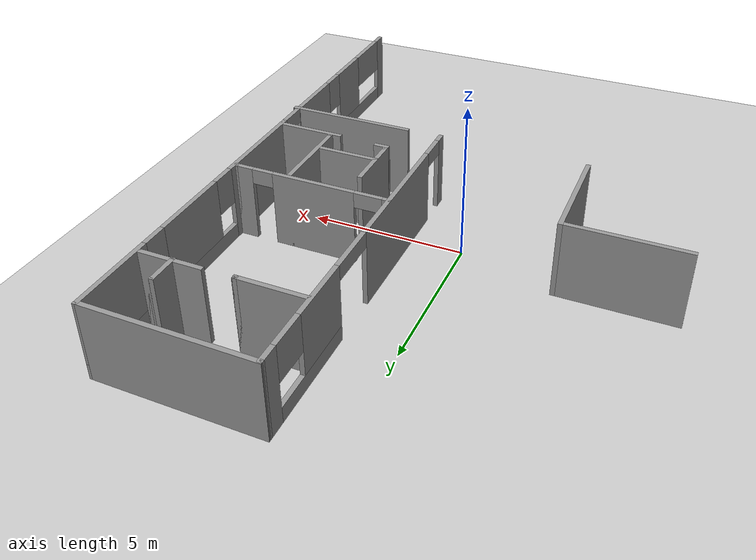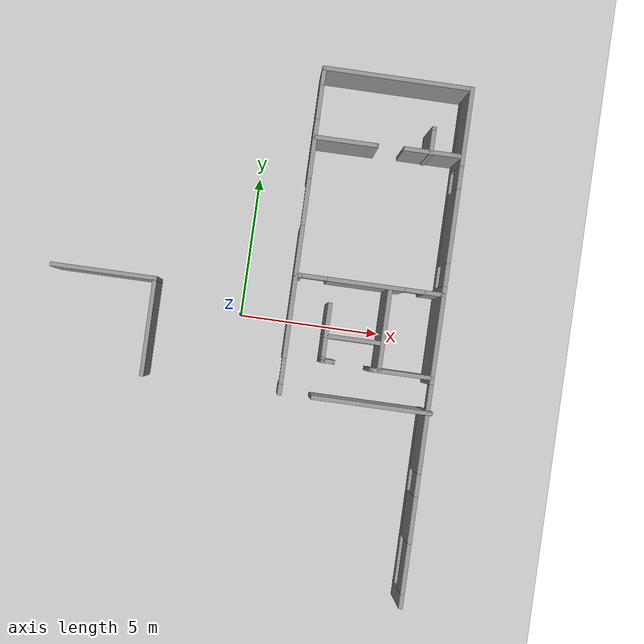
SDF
<sdf version="1.7">
 <world name="default">
  <model name="ground_plane">
   <static>1</static>
   <link name="link">
    <collision name="collision">
     <geometry><plane><normal>0 0 1</normal><size>100 100</size></plane></geometry>
     <surface>
      <contact><collide_bitmask>65535</collide_bitmask></contact>
      <friction><ode><mu>100</mu><mu2>50</mu2></ode></friction>
     </surface>
    </collision>
    <visual name="visual">
     <cast_shadows>0</cast_shadows>
     <geometry><plane><normal>0 0 1</normal><size>100 100</size></plane></geometry>
     <material>
      <script><uri>file://media/materials/scripts/gazebo.material</uri><name>Gazebo/Grey</name></script>
     </material>
    </visual>
   </link>
  </model>
  <model name="Floorplan6">
   <pose>0.09299 -3.7406 0 0 -0 0</pose>
   <link name="Wall_0">
    <collision name="Wall_0_Collision">
     <geometry><box><size>3.75 0.15 2.5</size></box></geometry>
     <pose>0 0 1.25 0 -0 0</pose>
    </collision>
    <visual name="Wall_0_Visual">
     <pose>0 0 1.25 0 -0 0</pose>
     <geometry><box><size>3.75 0.15 2.5</size></box></geometry>
     <material>
      <script><uri>file://media/materials/scripts/gazebo.material</uri><name>Gazebo/Grey</name></script>
      <ambient>1 1 1 1</ambient>
     </material>
     <meta><layer>0</layer></meta>
    </visual>
    <pose>-4.99953 4.56763 0 0 -0 3.14159</pose>
   </link>
   <link name="Wall_3">
    <pose>6.80047 3.51763 0 0 -0 1.5708</pose>
    <visual name="Wall_3_Visual_0">
     <pose>-8.87733 0 1.25 0 -0 0</pose>
     <geometry><box><size>0.495347 0.15 2.5</size></box></geometry>
     <material>
      <script><uri>file://media/materials/scripts/gazebo.material</uri><name>Gazebo/Grey</name></script>
      <ambient>1 1 1 1</ambient>
     </material>
     <meta><layer>0</layer></meta>
    </visual>
    <collision name="Wall_3_Collision_0">
     <geometry><box><size>0.495347 0.15 2.5</size></box></geometry>
     <pose>-8.87733 0 1.25 0 -0 0</pose>
    </collision>
    <visual name="Wall_3_Visual_1">
     <pose>0.426989 0 1.25 0 -0 0</pose>
     <geometry><box><size>3.4456 0.15 2.5</size></box></geometry>
     <material>
      <script><uri>file://media/materials/scripts/gazebo.material</uri><name>Gazebo/Grey</name></script>
      <ambient>1 1 1 1</ambient>
     </material>
     <meta><layer>0</layer></meta>
    </visual>
    <collision name="Wall_3_Collision_1">
     <geometry><box><size>3.4456 0.15 2.5</size></box></geometry>
     <pose>0.426989 0 1.25 0 -0 0</pose>
    </collision>
    <visual name="Wall_3_Visual_2">
     <pose>-5.41273 0 0.25 0 -0 0</pose>
     <geometry><box><size>6.43384 0.15 0.5</size></box></geometry>
     <material>
      <script><uri>file://media/materials/scripts/gazebo.material</uri><name>Gazebo/Grey</name></script>
      <ambient>1 1 1 1</ambient>
     </material>
     <meta><layer>0</layer></meta>
    </visual>
    <collision name="Wall_3_Collision_2">
     <geometry><box><size>6.43384 0.15 0.5</size></box></geometry>
     <pose>-5.41273 0 0.25 0 -0 0</pose>
    </collision>
    <visual name="Wall_3_Visual_3">
     <pose>5.63739 0 0.25 0 -0 0</pose>
     <geometry><box><size>6.97521 0.15 0.5</size></box></geometry>
     <material>
      <script><uri>file://media/materials/scripts/gazebo.material</uri><name>Gazebo/Grey</name></script>
      <ambient>1 1 1 1</ambient>
     </material>
     <meta><layer>0</layer></meta>
    </visual>
    <collision name="Wall_3_Collision_3">
     <geometry><box><size>6.97521 0.15 0.5</size></box></geometry>
     <pose>5.63739 0 0.25 0 -0 0</pose>
    </collision>
    <visual name="Wall_3_Visual_4">
     <pose>-6.03846 0 1.5 0 -0 0</pose>
     <geometry><box><size>1.64209 0.15 2</size></box></geometry>
     <material>
      <script><uri>file://media/materials/scripts/gazebo.material</uri><name>Gazebo/Grey</name></script>
      <ambient>1 1 1 1</ambient>
     </material>
     <meta><layer>0</layer></meta>
    </visual>
    <collision name="Wall_3_Collision_4">
     <geometry><box><size>1.64209 0.15 2</size></box></geometry>
     <pose>-6.03846 0 1.5 0 -0 0</pose>
    </collision>
    <visual name="Wall_3_Visual_5">
     <pose>-3.30661 0 1.5 0 -0 0</pose>
     <geometry><box><size>2.2216 0.15 2</size></box></geometry>
     <material>
      <script><uri>file://media/materials/scripts/gazebo.material</uri><name>Gazebo/Grey</name></script>
      <ambient>1 1 1 1</ambient>
     </material>
     <meta><layer>0</layer></meta>
    </visual>
    <collision name="Wall_3_Collision_5">
     <geometry><box><size>2.2216 0.15 2</size></box></geometry>
     <pose>-3.30661 0 1.5 0 -0 0</pose>
    </collision>
    <visual name="Wall_3_Visual_6">
     <pose>-3.30661 0 1.5 0 -0 0</pose>
     <geometry><box><size>2.2216 0.15 2</size></box></geometry>
     <material>
      <script><uri>file://media/materials/scripts/gazebo.material</uri><name>Gazebo/Grey</name></script>
      <ambient>1 1 1 1</ambient>
     </material>
     <meta><layer>0</layer></meta>
    </visual>
    <collision name="Wall_3_Collision_6">
     <geometry><box><size>2.2216 0.15 2</size></box></geometry>
     <pose>-3.30661 0 1.5 0 -0 0</pose>
    </collision>
    <visual name="Wall_3_Visual_7">
     <pose>4.25214 0 1.5 0 -0 0</pose>
     <geometry><box><size>2.6047 0.15 2</size></box></geometry>
     <material>
      <script><uri>file://media/materials/scripts/gazebo.material</uri><name>Gazebo/Grey</name></script>
      <ambient>1 1 1 1</ambient>
     </material>
     <meta><layer>0</layer></meta>
    </visual>
    <collision name="Wall_3_Collision_7">
     <geometry><box><size>2.6047 0.15 2</size></box></geometry>
     <pose>4.25214 0 1.5 0 -0 0</pose>
    </collision>
    <visual name="Wall_3_Visual_8">
     <pose>7.73974 0 1.5 0 -0 0</pose>
     <geometry><box><size>2.77051 0.15 2</size></box></geometry>
     <material>
      <script><uri>file://media/materials/scripts/gazebo.material</uri><name>Gazebo/Grey</name></script>
      <ambient>1 1 1 1</ambient>
     </material>
     <meta><layer>0</layer></meta>
    </visual>
    <collision name="Wall_3_Collision_8">
     <geometry><box><size>2.77051 0.15 2</size></box></geometry>
     <pose>7.73974 0 1.5 0 -0 0</pose>
    </collision>
    <visual name="Wall_3_Visual_9">
     <pose>-7.74458 0 1.9 0 -0 0</pose>
     <geometry><box><size>1.77015 0.15 1.2</size></box></geometry>
     <material>
      <script><uri>file://media/materials/scripts/gazebo.material</uri><name>Gazebo/Grey</name></script>
      <ambient>1 1 1 1</ambient>
     </material>
     <meta><layer>0</layer></meta>
    </visual>
    <collision name="Wall_3_Collision_9">
     <geometry><box><size>1.77015 0.15 1.2</size></box></geometry>
     <pose>-7.74458 0 1.9 0 -0 0</pose>
    </collision>
    <visual name="Wall_3_Visual_10">
     <pose>2.54979 0 1.9 0 -0 0</pose>
     <geometry><box><size>0.8 0.15 1.2</size></box></geometry>
     <material>
      <script><uri>file://media/materials/scripts/gazebo.material</uri><name>Gazebo/Grey</name></script>
      <ambient>1 1 1 1</ambient>
     </material>
     <meta><layer>0</layer></meta>
    </visual>
    <collision name="Wall_3_Collision_10">
     <geometry><box><size>0.8 0.15 1.2</size></box></geometry>
     <pose>2.54979 0 1.9 0 -0 0</pose>
    </collision>
    <visual name="Wall_3_Visual_11">
     <pose>-4.81741 0 1.9 0 -0 0</pose>
     <geometry><box><size>0.8 0.15 1.2</size></box></geometry>
     <material>
      <script><uri>file://media/materials/scripts/gazebo.material</uri><name>Gazebo/Grey</name></script>
      <ambient>1 1 1 1</ambient>
     </material>
     <meta><layer>0</layer></meta>
    </visual>
    <collision name="Wall_3_Collision_11">
     <geometry><box><size>0.8 0.15 1.2</size></box></geometry>
     <pose>-4.81741 0 1.9 0 -0 0</pose>
    </collision>
    <visual name="Wall_3_Visual_12">
     <pose>5.95449 0 1.9 0 -0 0</pose>
     <geometry><box><size>0.8 0.15 1.2</size></box></geometry>
     <material>
      <script><uri>file://media/materials/scripts/gazebo.material</uri><name>Gazebo/Grey</name></script>
      <ambient>1 1 1 1</ambient>
     </material>
     <meta><layer>0</layer></meta>
    </visual>
    <collision name="Wall_3_Collision_12">
     <geometry><box><size>0.8 0.15 1.2</size></box></geometry>
     <pose>5.95449 0 1.9 0 -0 0</pose>
    </collision>
    <visual name="Wall_3_Visual_13">
     <pose>-1.74581 0 2.25 0 -0 0</pose>
     <geometry><box><size>0.9 0.15 0.5</size></box></geometry>
     <material>
      <script><uri>file://media/materials/scripts/gazebo.material</uri><name>Gazebo/Grey</name></script>
      <ambient>1 1 1 1</ambient>
     </material>
     <meta><layer>0</layer></meta>
    </visual>
    <collision name="Wall_3_Collision_13">
     <geometry><box><size>0.9 0.15 0.5</size></box></geometry>
     <pose>-1.74581 0 2.25 0 -0 0</pose>
    </collision>
    <visual name="Wall_3_Visual_14">
     <pose>-1.74581 0 2.25 0 -0 0</pose>
     <geometry><box><size>0.9 0.15 0.5</size></box></geometry>
     <material>
      <script><uri>file://media/materials/scripts/gazebo.material</uri><name>Gazebo/Grey</name></script>
      <ambient>1 1 1 1</ambient>
     </material>
     <meta><layer>0</layer></meta>
    </visual>
    <collision name="Wall_3_Collision_14">
     <geometry><box><size>0.9 0.15 0.5</size></box></geometry>
     <pose>-1.74581 0 2.25 0 -0 0</pose>
    </collision>
   </link>
   <link name="Wall_36">
    <collision name="Wall_36_Collision">
     <geometry><box><size>4.25 0.15 2.5</size></box></geometry>
     <pose>0 0 1.25 0 -0 0</pose>
    </collision>
    <visual name="Wall_36_Visual">
     <pose>0 0 1.25 0 -0 0</pose>
     <geometry><box><size>4.25 0.15 2.5</size></box></geometry>
     <material>
      <script><uri>file://media/materials/scripts/gazebo.material</uri><name>Gazebo/Grey</name></script>
      <ambient>1 1 1 1</ambient>
     </material>
     <meta><layer>0</layer></meta>
    </visual>
    <pose>4.84953 1.22918 0 0 -0 0</pose>
   </link>
   <link name="Wall_37">
    <collision name="Wall_37_Collision">
     <geometry><box><size>0.15 0.15 2.5</size></box></geometry>
     <pose>0 0 1.25 0 -0 0</pose>
    </collision>
    <visual name="Wall_37_Visual">
     <pose>0 0 1.25 0 -0 0</pose>
     <geometry><box><size>0.15 0.15 2.5</size></box></geometry>
     <material>
      <script><uri>file://media/materials/scripts/gazebo.material</uri><name>Gazebo/Grey</name></script>
      <ambient>1 1 1 1</ambient>
     </material>
     <meta><layer>0</layer></meta>
    </visual>
    <pose>6.89953 1.22918 0 0 -0 0</pose>
   </link>
   <link name="Wall_39">
    <collision name="Wall_39_Collision">
     <geometry><box><size>2.25 0.15 2.5</size></box></geometry>
     <pose>0 0 1.25 0 -0 0</pose>
    </collision>
    <visual name="Wall_39_Visual">
     <pose>0 0 1.25 0 -0 0</pose>
     <geometry><box><size>2.25 0.15 2.5</size></box></geometry>
     <material>
      <script><uri>file://media/materials/scripts/gazebo.material</uri><name>Gazebo/Grey</name></script>
      <ambient>1 1 1 1</ambient>
     </material>
     <meta><layer>0</layer></meta>
    </visual>
    <pose>2.72321 10.1783 0 0 -0 0</pose>
   </link>
   <link name="Wall_4">
    <collision name="Wall_4_Collision">
     <geometry><box><size>5.32681 0.15 2.5</size></box></geometry>
     <pose>0 0 1.25 0 -0 0</pose>
    </collision>
    <visual name="Wall_4_Visual">
     <pose>0 0 1.25 0 -0 0</pose>
     <geometry><box><size>5.32681 0.15 2.5</size></box></geometry>
     <material>
      <script><uri>file://media/materials/scripts/gazebo.material</uri><name>Gazebo/Grey</name></script>
      <ambient>1 1 1 1</ambient>
     </material>
     <meta><layer>0</layer></meta>
    </visual>
    <pose>4.2121 12.5804 0 0 -0 3.13665</pose>
   </link>
   <link name="Wall_40">
    <collision name="Wall_40_Collision">
     <geometry><box><size>0.15 0.15 2.5</size></box></geometry>
     <pose>0 0 1.25 0 -0 0</pose>
    </collision>
    <visual name="Wall_40_Visual">
     <pose>0 0 1.25 0 -0 0</pose>
     <geometry><box><size>0.15 0.15 2.5</size></box></geometry>
     <material>
      <script><uri>file://media/materials/scripts/gazebo.material</uri><name>Gazebo/Grey</name></script>
      <ambient>1 1 1 1</ambient>
     </material>
     <meta><layer>0</layer></meta>
    </visual>
    <pose>3.77321 10.1783 0 0 -0 0</pose>
   </link>
   <link name="Wall_42">
    <collision name="Wall_42_Collision">
     <geometry><box><size>2 0.15 2.5</size></box></geometry>
     <pose>0 0 1.25 0 -0 0</pose>
    </collision>
    <visual name="Wall_42_Visual">
     <pose>0 0 1.25 0 -0 0</pose>
     <geometry><box><size>2 0.15 2.5</size></box></geometry>
     <material>
      <script><uri>file://media/materials/scripts/gazebo.material</uri><name>Gazebo/Grey</name></script>
      <ambient>1 1 1 1</ambient>
     </material>
     <meta><layer>0</layer></meta>
    </visual>
    <pose>5.7285 10.2075 0 0 -0 0</pose>
   </link>
   <link name="Wall_43">
    <collision name="Wall_43_Collision">
     <geometry><box><size>0.15 0.15 2.5</size></box></geometry>
     <pose>0 0 1.25 0 -0 0</pose>
    </collision>
    <visual name="Wall_43_Visual">
     <pose>0 0 1.25 0 -0 0</pose>
     <geometry><box><size>0.15 0.15 2.5</size></box></geometry>
     <material>
      <script><uri>file://media/materials/scripts/gazebo.material</uri><name>Gazebo/Grey</name></script>
      <ambient>1 1 1 1</ambient>
     </material>
     <meta><layer>0</layer></meta>
    </visual>
    <pose>6.6535 10.2075 0 0 -0 0</pose>
   </link>
   <link name="Wall_45">
    <collision name="Wall_45_Collision">
     <geometry><box><size>1 0.15 2.5</size></box></geometry>
     <pose>0 0 1.25 0 -0 0</pose>
    </collision>
    <visual name="Wall_45_Visual">
     <pose>0 0 1.25 0 -0 0</pose>
     <geometry><box><size>1 0.15 2.5</size></box></geometry>
     <material>
      <script><uri>file://media/materials/scripts/gazebo.material</uri><name>Gazebo/Grey</name></script>
      <ambient>1 1 1 1</ambient>
     </material>
     <meta><layer>0</layer></meta>
    </visual>
    <pose>5.68115 10.6033 0 0 -0 1.5708</pose>
   </link>
   <link name="Wall_46">
    <collision name="Wall_46_Collision">
     <geometry><box><size>0.15 0.15 2.5</size></box></geometry>
     <pose>0 0 1.25 0 -0 0</pose>
    </collision>
    <visual name="Wall_46_Visual">
     <pose>0 0 1.25 0 -0 0</pose>
     <geometry><box><size>0.15 0.15 2.5</size></box></geometry>
     <material>
      <script><uri>file://media/materials/scripts/gazebo.material</uri><name>Gazebo/Grey</name></script>
      <ambient>1 1 1 1</ambient>
     </material>
     <meta><layer>0</layer></meta>
    </visual>
    <pose>5.68115 11.0283 0 0 -0 0</pose>
   </link>
   <link name="Wall_48">
    <pose>4.17933 5.36583 0 0 -0 0</pose>
    <visual name="Wall_48_Visual_0">
     <pose>-2.4872 0 1.25 0 -0 0</pose>
     <geometry><box><size>0.275607 0.15 2.5</size></box></geometry>
     <material>
      <script><uri>file://media/materials/scripts/gazebo.material</uri><name>Gazebo/Grey</name></script>
      <ambient>1 1 1 1</ambient>
     </material>
     <meta><layer>0</layer></meta>
    </visual>
    <collision name="Wall_48_Collision_0">
     <geometry><box><size>0.275607 0.15 2.5</size></box></geometry>
     <pose>-2.4872 0 1.25 0 -0 0</pose>
    </collision>
    <visual name="Wall_48_Visual_1">
     <pose>-0.093122 0 1.25 0 -0 0</pose>
     <geometry><box><size>2.71254 0.15 2.5</size></box></geometry>
     <material>
      <script><uri>file://media/materials/scripts/gazebo.material</uri><name>Gazebo/Grey</name></script>
      <ambient>1 1 1 1</ambient>
     </material>
     <meta><layer>0</layer></meta>
    </visual>
    <collision name="Wall_48_Collision_1">
     <geometry><box><size>2.71254 0.15 2.5</size></box></geometry>
     <pose>-0.093122 0 1.25 0 -0 0</pose>
    </collision>
    <visual name="Wall_48_Visual_2">
     <pose>2.29314 0 1.25 0 -0 0</pose>
     <geometry><box><size>0.663711 0.15 2.5</size></box></geometry>
     <material>
      <script><uri>file://media/materials/scripts/gazebo.material</uri><name>Gazebo/Grey</name></script>
      <ambient>1 1 1 1</ambient>
     </material>
     <meta><layer>0</layer></meta>
    </visual>
    <collision name="Wall_48_Collision_2">
     <geometry><box><size>0.663711 0.15 2.5</size></box></geometry>
     <pose>2.29314 0 1.25 0 -0 0</pose>
    </collision>
    <visual name="Wall_48_Visual_3">
     <pose>-1.89939 0 2.25 0 -0 0</pose>
     <geometry><box><size>0.9 0.15 0.5</size></box></geometry>
     <material>
      <script><uri>file://media/materials/scripts/gazebo.material</uri><name>Gazebo/Grey</name></script>
      <ambient>1 1 1 1</ambient>
     </material>
     <meta><layer>0</layer></meta>
    </visual>
    <collision name="Wall_48_Collision_3">
     <geometry><box><size>0.9 0.15 0.5</size></box></geometry>
     <pose>-1.89939 0 2.25 0 -0 0</pose>
    </collision>
    <visual name="Wall_48_Visual_4">
     <pose>1.61222 0 2.25 0 -0 0</pose>
     <geometry><box><size>0.69814 0.15 0.5</size></box></geometry>
     <material>
      <script><uri>file://media/materials/scripts/gazebo.material</uri><name>Gazebo/Grey</name></script>
      <ambient>1 1 1 1</ambient>
     </material>
     <meta><layer>0</layer></meta>
    </visual>
    <collision name="Wall_48_Collision_4">
     <geometry><box><size>0.69814 0.15 0.5</size></box></geometry>
     <pose>1.61222 0 2.25 0 -0 0</pose>
    </collision>
   </link>
   <link name="Wall_49">
    <collision name="Wall_49_Collision">
     <geometry><box><size>0.15 0.15 2.5</size></box></geometry>
     <pose>0 0 1.25 0 -0 0</pose>
    </collision>
    <visual name="Wall_49_Visual">
     <pose>0 0 1.25 0 -0 0</pose>
     <geometry><box><size>0.15 0.15 2.5</size></box></geometry>
     <material>
      <script><uri>file://media/materials/scripts/gazebo.material</uri><name>Gazebo/Grey</name></script>
      <ambient>1 1 1 1</ambient>
     </material>
     <meta><layer>0</layer></meta>
    </visual>
    <pose>6.72933 5.36583 0 0 -0 0</pose>
   </link>
   <link name="Wall_5">
    <pose>1.62372 6.89263 0 0 -0 -1.5708</pose>
    <visual name="Wall_5_Visual_0">
     <pose>-5.42871 0 1.25 0 -0 0</pose>
     <geometry><box><size>0.642575 0.15 2.5</size></box></geometry>
     <material>
      <script><uri>file://media/materials/scripts/gazebo.material</uri><name>Gazebo/Grey</name></script>
      <ambient>1 1 1 1</ambient>
     </material>
     <meta><layer>0</layer></meta>
    </visual>
    <collision name="Wall_5_Collision_0">
     <geometry><box><size>0.642575 0.15 2.5</size></box></geometry>
     <pose>-5.42871 0 1.25 0 -0 0</pose>
    </collision>
    <visual name="Wall_5_Visual_1">
     <pose>2.12373 0 1.25 0 -0 0</pose>
     <geometry><box><size>4.6568 0.15 2.5</size></box></geometry>
     <material>
      <script><uri>file://media/materials/scripts/gazebo.material</uri><name>Gazebo/Grey</name></script>
      <ambient>1 1 1 1</ambient>
     </material>
     <meta><layer>0</layer></meta>
    </visual>
    <collision name="Wall_5_Collision_1">
     <geometry><box><size>4.6568 0.15 2.5</size></box></geometry>
     <pose>2.12373 0 1.25 0 -0 0</pose>
    </collision>
    <visual name="Wall_5_Visual_2">
     <pose>5.55106 0 1.25 0 -0 0</pose>
     <geometry><box><size>0.397872 0.15 2.5</size></box></geometry>
     <material>
      <script><uri>file://media/materials/scripts/gazebo.material</uri><name>Gazebo/Grey</name></script>
      <ambient>1 1 1 1</ambient>
     </material>
     <meta><layer>0</layer></meta>
    </visual>
    <collision name="Wall_5_Collision_2">
     <geometry><box><size>0.397872 0.15 2.5</size></box></geometry>
     <pose>5.55106 0 1.25 0 -0 0</pose>
    </collision>
    <visual name="Wall_5_Visual_3">
     <pose>-3.4736 0 0.25 0 -0 0</pose>
     <geometry><box><size>3.26765 0.15 0.5</size></box></geometry>
     <material>
      <script><uri>file://media/materials/scripts/gazebo.material</uri><name>Gazebo/Grey</name></script>
      <ambient>1 1 1 1</ambient>
     </material>
     <meta><layer>0</layer></meta>
    </visual>
    <collision name="Wall_5_Collision_3">
     <geometry><box><size>3.26765 0.15 0.5</size></box></geometry>
     <pose>-3.4736 0 0.25 0 -0 0</pose>
    </collision>
    <visual name="Wall_5_Visual_4">
     <pose>-2.88015 0 1.5 0 -0 0</pose>
     <geometry><box><size>2.08075 0.15 2</size></box></geometry>
     <material>
      <script><uri>file://media/materials/scripts/gazebo.material</uri><name>Gazebo/Grey</name></script>
      <ambient>1 1 1 1</ambient>
     </material>
     <meta><layer>0</layer></meta>
    </visual>
    <collision name="Wall_5_Collision_4">
     <geometry><box><size>2.08075 0.15 2</size></box></geometry>
     <pose>-2.88015 0 1.5 0 -0 0</pose>
    </collision>
    <visual name="Wall_5_Visual_5">
     <pose>-4.51398 0 1.9 0 -0 0</pose>
     <geometry><box><size>1.1869 0.15 1.2</size></box></geometry>
     <material>
      <script><uri>file://media/materials/scripts/gazebo.material</uri><name>Gazebo/Grey</name></script>
      <ambient>1 1 1 1</ambient>
     </material>
     <meta><layer>0</layer></meta>
    </visual>
    <collision name="Wall_5_Collision_5">
     <geometry><box><size>1.1869 0.15 1.2</size></box></geometry>
     <pose>-4.51398 0 1.9 0 -0 0</pose>
    </collision>
    <visual name="Wall_5_Visual_6">
     <pose>4.90213 0 2.25 0 -0 0</pose>
     <geometry><box><size>0.9 0.15 0.5</size></box></geometry>
     <material>
      <script><uri>file://media/materials/scripts/gazebo.material</uri><name>Gazebo/Grey</name></script>
      <ambient>1 1 1 1</ambient>
     </material>
     <meta><layer>0</layer></meta>
    </visual>
    <collision name="Wall_5_Collision_6">
     <geometry><box><size>0.9 0.15 0.5</size></box></geometry>
     <pose>4.90213 0 2.25 0 -0 0</pose>
    </collision>
    <visual name="Wall_5_Visual_7">
     <pose>-1.02222 0 2.25 0 -0 0</pose>
     <geometry><box><size>1.63511 0.15 0.5</size></box></geometry>
     <material>
      <script><uri>file://media/materials/scripts/gazebo.material</uri><name>Gazebo/Grey</name></script>
      <ambient>1 1 1 1</ambient>
     </material>
     <meta><layer>0</layer></meta>
    </visual>
    <collision name="Wall_5_Collision_7">
     <geometry><box><size>1.63511 0.15 0.5</size></box></geometry>
     <pose>-1.02222 0 2.25 0 -0 0</pose>
    </collision>
   </link>
   <link name="Wall_51">
    <collision name="Wall_51_Collision">
     <geometry><box><size>2.25 0.15 2.5</size></box></geometry>
     <pose>0 0 1.25 0 -0 0</pose>
    </collision>
    <visual name="Wall_51_Visual">
     <pose>0 0 1.25 0 -0 0</pose>
     <geometry><box><size>2.25 0.15 2.5</size></box></geometry>
     <material>
      <script><uri>file://media/materials/scripts/gazebo.material</uri><name>Gazebo/Grey</name></script>
      <ambient>1 1 1 1</ambient>
     </material>
     <meta><layer>0</layer></meta>
    </visual>
    <pose>5.71359 2.45496 0 0 -0 3.14159</pose>
   </link>
   <link name="Wall_52">
    <collision name="Wall_52_Collision">
     <geometry><box><size>0.15 0.15 2.5</size></box></geometry>
     <pose>0 0 1.25 0 -0 0</pose>
    </collision>
    <visual name="Wall_52_Visual">
     <pose>0 0 1.25 0 -0 0</pose>
     <geometry><box><size>0.15 0.15 2.5</size></box></geometry>
     <material>
      <script><uri>file://media/materials/scripts/gazebo.material</uri><name>Gazebo/Grey</name></script>
      <ambient>1 1 1 1</ambient>
     </material>
     <meta><layer>0</layer></meta>
    </visual>
    <pose>4.66359 2.45496 0 0 -0 0</pose>
   </link>
   <link name="Wall_54">
    <collision name="Wall_54_Collision">
     <geometry><box><size>0.15 0.15 2.5</size></box></geometry>
     <pose>0 0 1.25 0 -0 0</pose>
    </collision>
    <visual name="Wall_54_Visual">
     <pose>0 0 1.25 0 -0 0</pose>
     <geometry><box><size>0.15 0.15 2.5</size></box></geometry>
     <material>
      <script><uri>file://media/materials/scripts/gazebo.material</uri><name>Gazebo/Grey</name></script>
      <ambient>1 1 1 1</ambient>
     </material>
     <meta><layer>0</layer></meta>
    </visual>
    <pose>4.66359 2.45496 0 0 -0 0</pose>
   </link>
   <link name="Wall_55">
    <collision name="Wall_55_Collision">
     <geometry><box><size>0.15 0.15 2.5</size></box></geometry>
     <pose>0 0 1.25 0 -0 0</pose>
    </collision>
    <visual name="Wall_55_Visual">
     <pose>0 0 1.25 0 -0 0</pose>
     <geometry><box><size>0.15 0.15 2.5</size></box></geometry>
     <material>
      <script><uri>file://media/materials/scripts/gazebo.material</uri><name>Gazebo/Grey</name></script>
      <ambient>1 1 1 1</ambient>
     </material>
     <meta><layer>0</layer></meta>
    </visual>
    <pose>4.66359 2.45496 0 0 -0 0</pose>
   </link>
   <link name="Wall_57">
    <collision name="Wall_57_Collision">
     <geometry><box><size>0.15 0.15 2.5</size></box></geometry>
     <pose>0 0 1.25 0 -0 0</pose>
    </collision>
    <visual name="Wall_57_Visual">
     <pose>0 0 1.25 0 -0 0</pose>
     <geometry><box><size>0.15 0.15 2.5</size></box></geometry>
     <material>
      <script><uri>file://media/materials/scripts/gazebo.material</uri><name>Gazebo/Grey</name></script>
      <ambient>1 1 1 1</ambient>
     </material>
     <meta><layer>0</layer></meta>
    </visual>
    <pose>4.66359 2.45496 0 0 -0 0</pose>
   </link>
   <link name="Wall_59">
    <collision name="Wall_59_Collision">
     <geometry><box><size>3 0.15 2.5</size></box></geometry>
     <pose>0 0 1.25 0 -0 0</pose>
    </collision>
    <visual name="Wall_59_Visual">
     <pose>0 0 1.25 0 -0 0</pose>
     <geometry><box><size>3 0.15 2.5</size></box></geometry>
     <material>
      <script><uri>file://media/materials/scripts/gazebo.material</uri><name>Gazebo/Grey</name></script>
      <ambient>1 1 1 1</ambient>
     </material>
     <meta><layer>0</layer></meta>
    </visual>
    <pose>4.93515 3.94083 0 0 -0 -1.5708</pose>
   </link>
   <link name="Wall_60">
    <collision name="Wall_60_Collision">
     <geometry><box><size>0.15 0.15 2.5</size></box></geometry>
     <pose>0 0 1.25 0 -0 0</pose>
    </collision>
    <visual name="Wall_60_Visual">
     <pose>0 0 1.25 0 -0 0</pose>
     <geometry><box><size>0.15 0.15 2.5</size></box></geometry>
     <material>
      <script><uri>file://media/materials/scripts/gazebo.material</uri><name>Gazebo/Grey</name></script>
      <ambient>1 1 1 1</ambient>
     </material>
     <meta><layer>0</layer></meta>
    </visual>
    <pose>4.93515 2.51583 0 0 -0 0</pose>
   </link>
   <link name="Wall_62">
    <collision name="Wall_62_Collision">
     <geometry><box><size>2 0.15 2.5</size></box></geometry>
     <pose>0 0 1.25 0 -0 0</pose>
    </collision>
    <visual name="Wall_62_Visual">
     <pose>0 0 1.25 0 -0 0</pose>
     <geometry><box><size>2 0.15 2.5</size></box></geometry>
     <material>
      <script><uri>file://media/materials/scripts/gazebo.material</uri><name>Gazebo/Grey</name></script>
      <ambient>1 1 1 1</ambient>
     </material>
     <meta><layer>0</layer></meta>
    </visual>
    <pose>2.9458 3.56318 0 0 -0 -1.5708</pose>
   </link>
   <link name="Wall_63">
    <collision name="Wall_63_Collision">
     <geometry><box><size>0.25 0.15 2.5</size></box></geometry>
     <pose>0 0 1.25 0 -0 0</pose>
    </collision>
    <visual name="Wall_63_Visual">
     <pose>0 0 1.25 0 -0 0</pose>
     <geometry><box><size>0.25 0.15 2.5</size></box></geometry>
     <material>
      <script><uri>file://media/materials/scripts/gazebo.material</uri><name>Gazebo/Grey</name></script>
      <ambient>1 1 1 1</ambient>
     </material>
     <meta><layer>0</layer></meta>
    </visual>
    <pose>2.9458 2.58818 0 0 -0 -1.5708</pose>
   </link>
   <link name="Wall_64">
    <collision name="Wall_64_Collision">
     <geometry><box><size>0.5 0.15 2.5</size></box></geometry>
     <pose>0 0 1.25 0 -0 0</pose>
    </collision>
    <visual name="Wall_64_Visual">
     <pose>0 0 1.25 0 -0 0</pose>
     <geometry><box><size>0.5 0.15 2.5</size></box></geometry>
     <material>
      <script><uri>file://media/materials/scripts/gazebo.material</uri><name>Gazebo/Grey</name></script>
      <ambient>1 1 1 1</ambient>
     </material>
     <meta><layer>0</layer></meta>
    </visual>
    <pose>3.1208 2.53818 0 0 -0 0</pose>
   </link>
   <link name="Wall_65">
    <collision name="Wall_65_Collision">
     <geometry><box><size>0.15 0.15 2.5</size></box></geometry>
     <pose>0 0 1.25 0 -0 0</pose>
    </collision>
    <visual name="Wall_65_Visual">
     <pose>0 0 1.25 0 -0 0</pose>
     <geometry><box><size>0.15 0.15 2.5</size></box></geometry>
     <material>
      <script><uri>file://media/materials/scripts/gazebo.material</uri><name>Gazebo/Grey</name></script>
      <ambient>1 1 1 1</ambient>
     </material>
     <meta><layer>0</layer></meta>
    </visual>
    <pose>3.2958 2.53818 0 0 -0 0</pose>
   </link>
   <link name="Wall_67">
    <collision name="Wall_67_Collision">
     <geometry><box><size>2 0.15 2.5</size></box></geometry>
     <pose>0 0 1.25 0 -0 0</pose>
    </collision>
    <visual name="Wall_67_Visual">
     <pose>0 0 1.25 0 -0 0</pose>
     <geometry><box><size>2 0.15 2.5</size></box></geometry>
     <material>
      <script><uri>file://media/materials/scripts/gazebo.material</uri><name>Gazebo/Grey</name></script>
      <ambient>1 1 1 1</ambient>
     </material>
     <meta><layer>0</layer></meta>
    </visual>
    <pose>3.8708 3.40575 0 0 -0 0</pose>
   </link>
   <link name="Wall_7">
    <collision name="Wall_7_Collision">
     <geometry><box><size>3.5 0.15 2.5</size></box></geometry>
     <pose>0 0 1.25 0 -0 0</pose>
    </collision>
    <visual name="Wall_7_Visual">
     <pose>0 0 1.25 0 -0 0</pose>
     <geometry><box><size>3.5 0.15 2.5</size></box></geometry>
     <material>
      <script><uri>file://media/materials/scripts/gazebo.material</uri><name>Gazebo/Grey</name></script>
      <ambient>1 1 1 1</ambient>
     </material>
     <meta><layer>0</layer></meta>
    </visual>
    <pose>-3.19953 2.89263 0 0 -0 1.5708</pose>
   </link>
   <link name="Wall_8">
    <collision name="Wall_8_Collision">
     <geometry><box><size>0.15 0.15 2.5</size></box></geometry>
     <pose>0 0 1.25 0 -0 0</pose>
    </collision>
    <visual name="Wall_8_Visual">
     <pose>0 0 1.25 0 -0 0</pose>
     <geometry><box><size>0.15 0.15 2.5</size></box></geometry>
     <material>
      <script><uri>file://media/materials/scripts/gazebo.material</uri><name>Gazebo/Grey</name></script>
      <ambient>1 1 1 1</ambient>
     </material>
     <meta><layer>0</layer></meta>
    </visual>
    <pose>-3.19953 4.56763 0 0 -0 0</pose>
   </link>
   <static>1</static>
  </model>
 </world>
</sdf>
